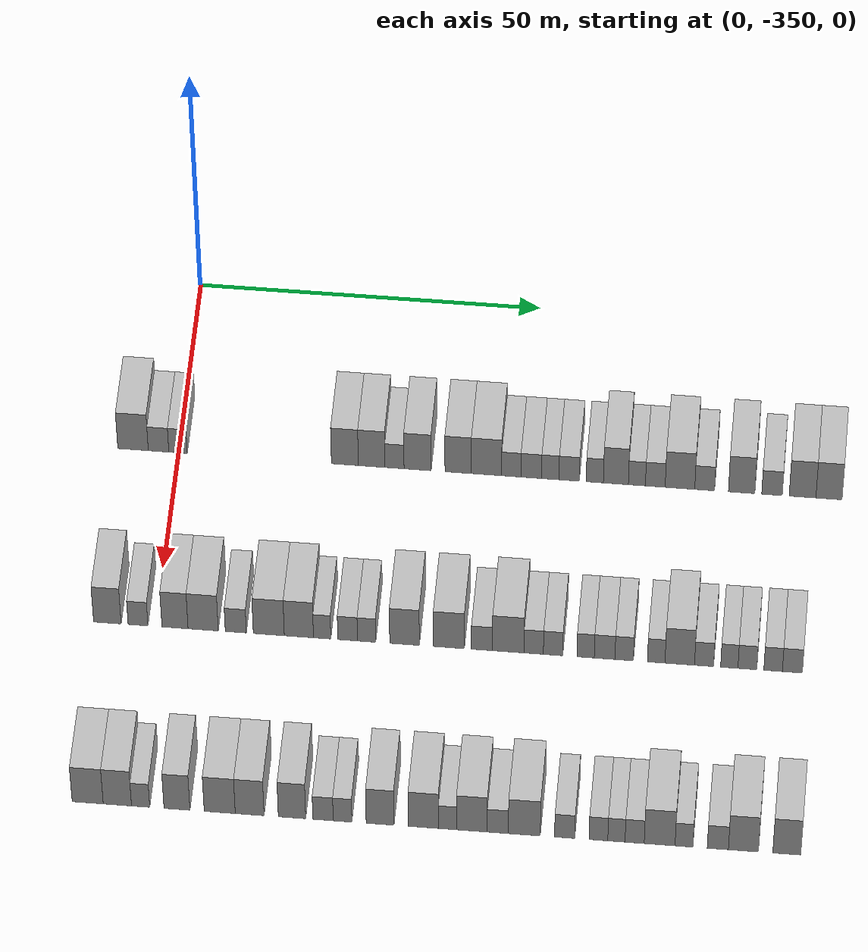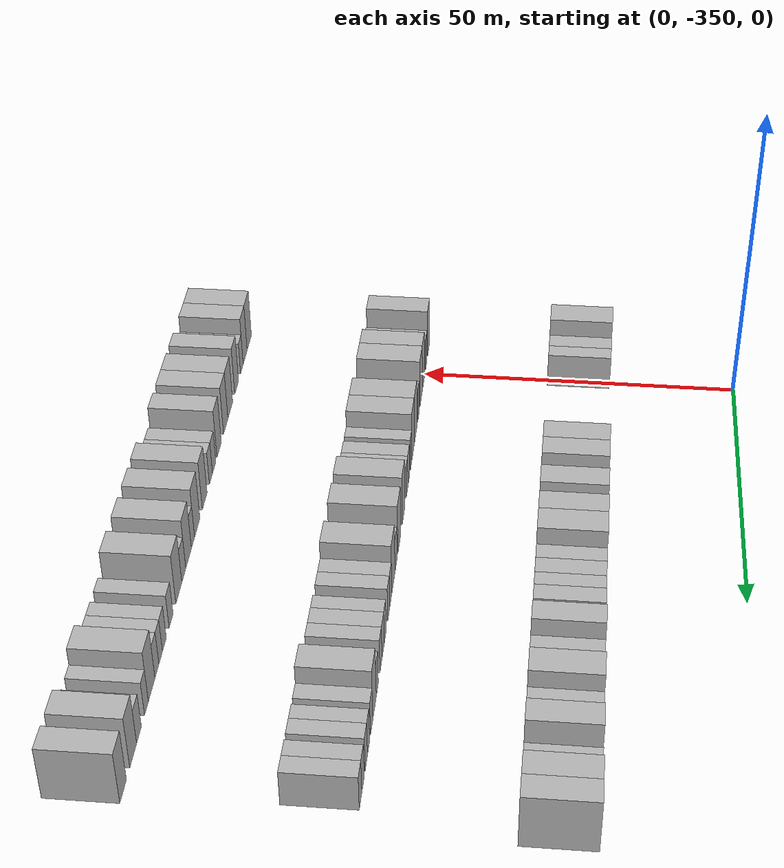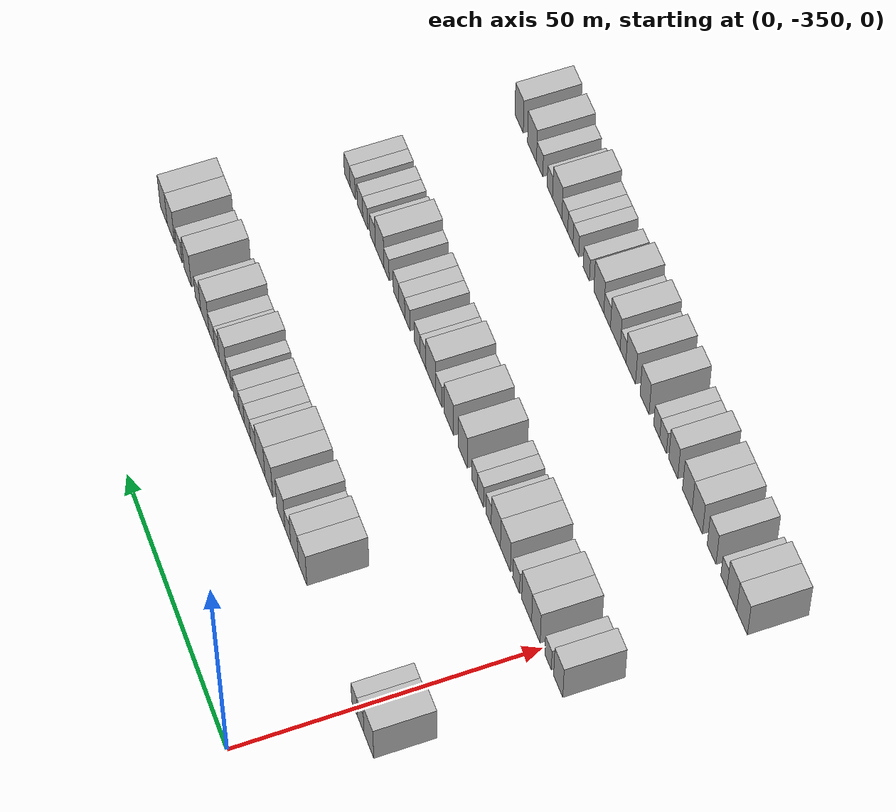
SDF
<sdf version="1.6">
 <world name="default">
  <model name="building_28">
   <static>1</static>
   <pose>25.0000 -356.5834 0 0.000000 0.000000 0.000000</pose>
   <link name="link">
    <pose>0 0 4.50 0 0 0</pose>
    <collision name="collision"><geometry><box><size>10.0000 4.4204 9.0000</size></box></geometry></collision>
    <visual name="visual">
     <cast_shadows>0</cast_shadows>
     <geometry><box><size>10.0000 4.4204 9.0000</size></box></geometry>
     <material>
      <script>
       <uri>model://HANNAS_wall/materials/scripts</uri>
       <uri>model://HANNAS_wall/materials/textures</uri>
       <name>vrc/HANNAS_wall</name>
      </script>
     </material>
    </visual>
   </link>
  </model>
  <model name="building_29">
   <static>1</static>
   <pose>25.0000 -352.8852 0 0.000000 0.000000 0.000000</pose>
   <link name="link">
    <pose>0 0 3.00 0 0 0</pose>
    <collision name="collision"><geometry><box><size>10.0000 2.9761 6.0000</size></box></geometry></collision>
    <visual name="visual">
     <cast_shadows>0</cast_shadows>
     <geometry><box><size>10.0000 2.9761 6.0000</size></box></geometry>
     <material>
      <script>
       <uri>model://HANNAS_wall/materials/scripts</uri>
       <uri>model://HANNAS_wall/materials/textures</uri>
       <name>vrc/HANNAS_wall</name>
      </script>
     </material>
    </visual>
   </link>
  </model>
  <model name="building_30">
   <static>1</static>
   <pose>25.0000 -350.0547 0 0.000000 0.000000 0.000000</pose>
   <link name="link">
    <pose>0 0 3.00 0 0 0</pose>
    <collision name="collision"><geometry><box><size>10.0000 2.6849 6.0000</size></box></geometry></collision>
    <visual name="visual">
     <cast_shadows>0</cast_shadows>
     <geometry><box><size>10.0000 2.6849 6.0000</size></box></geometry>
     <material>
      <script>
       <uri>model://HANNAS_wall/materials/scripts</uri>
       <uri>model://HANNAS_wall/materials/textures</uri>
       <name>vrc/HANNAS_wall</name>
      </script>
     </material>
    </visual>
   </link>
  </model>
  <model name="building_31">
   <static>1</static>
   <pose>25.0000 -325.8660 0 0.000000 0.000000 0.000000</pose>
   <link name="link">
    <pose>0 0 4.50 0 0 0</pose>
    <collision name="collision"><geometry><box><size>10.0000 3.8976 9.0000</size></box></geometry></collision>
    <visual name="visual">
     <cast_shadows>0</cast_shadows>
     <geometry><box><size>10.0000 3.8976 9.0000</size></box></geometry>
     <material>
      <script>
       <uri>model://HANNAS_wall/materials/scripts</uri>
       <uri>model://HANNAS_wall/materials/textures</uri>
       <name>vrc/HANNAS_wall</name>
      </script>
     </material>
    </visual>
   </link>
  </model>
  <model name="building_32">
   <static>1</static>
   <pose>25.0000 -321.9896 0 0.000000 0.000000 0.000000</pose>
   <link name="link">
    <pose>0 0 4.50 0 0 0</pose>
    <collision name="collision"><geometry><box><size>10.0000 3.8553 9.0000</size></box></geometry></collision>
    <visual name="visual">
     <cast_shadows>0</cast_shadows>
     <geometry><box><size>10.0000 3.8553 9.0000</size></box></geometry>
     <material>
      <script>
       <uri>model://HANNAS_wall/materials/scripts</uri>
       <uri>model://HANNAS_wall/materials/textures</uri>
       <name>vrc/HANNAS_wall</name>
      </script>
     </material>
    </visual>
   </link>
  </model>
  <model name="building_33">
   <static>1</static>
   <pose>25.0000 -318.6827 0 0.000000 0.000000 0.000000</pose>
   <link name="link">
    <pose>0 0 3.00 0 0 0</pose>
    <collision name="collision"><geometry><box><size>10.0000 2.7585 6.0000</size></box></geometry></collision>
    <visual name="visual">
     <cast_shadows>0</cast_shadows>
     <geometry><box><size>10.0000 2.7585 6.0000</size></box></geometry>
     <material>
      <script>
       <uri>model://HANNAS_wall/materials/scripts</uri>
       <uri>model://HANNAS_wall/materials/textures</uri>
       <name>vrc/HANNAS_wall</name>
      </script>
     </material>
    </visual>
   </link>
  </model>
  <model name="building_34">
   <static>1</static>
   <pose>25.0000 -315.3445 0 0.000000 0.000000 0.000000</pose>
   <link name="link">
    <pose>0 0 4.50 0 0 0</pose>
    <collision name="collision"><geometry><box><size>10.0000 3.9180 9.0000</size></box></geometry></collision>
    <visual name="visual">
     <cast_shadows>0</cast_shadows>
     <geometry><box><size>10.0000 3.9180 9.0000</size></box></geometry>
     <material>
      <script>
       <uri>model://HANNAS_wall/materials/scripts</uri>
       <uri>model://HANNAS_wall/materials/textures</uri>
       <name>vrc/HANNAS_wall</name>
      </script>
     </material>
    </visual>
   </link>
  </model>
  <model name="building_35">
   <static>1</static>
   <pose>25.0000 -309.4864 0 0.000000 0.000000 0.000000</pose>
   <link name="link">
    <pose>0 0 4.50 0 0 0</pose>
    <collision name="collision"><geometry><box><size>10.0000 3.7982 9.0000</size></box></geometry></collision>
    <visual name="visual">
     <cast_shadows>0</cast_shadows>
     <geometry><box><size>10.0000 3.7982 9.0000</size></box></geometry>
     <material>
      <script>
       <uri>model://HANNAS_wall/materials/scripts</uri>
       <uri>model://HANNAS_wall/materials/textures</uri>
       <name>vrc/HANNAS_wall</name>
      </script>
     </material>
    </visual>
   </link>
  </model>
  <model name="building_36">
   <static>1</static>
   <pose>25.0000 -305.3944 0 0.000000 0.000000 0.000000</pose>
   <link name="link">
    <pose>0 0 4.50 0 0 0</pose>
    <collision name="collision"><geometry><box><size>10.0000 4.3857 9.0000</size></box></geometry></collision>
    <visual name="visual">
     <cast_shadows>0</cast_shadows>
     <geometry><box><size>10.0000 4.3857 9.0000</size></box></geometry>
     <material>
      <script>
       <uri>model://HANNAS_wall/materials/scripts</uri>
       <uri>model://HANNAS_wall/materials/textures</uri>
       <name>vrc/HANNAS_wall</name>
      </script>
     </material>
    </visual>
   </link>
  </model>
  <model name="building_37">
   <static>1</static>
   <pose>25.0000 -301.8112 0 0.000000 0.000000 0.000000</pose>
   <link name="link">
    <pose>0 0 3.00 0 0 0</pose>
    <collision name="collision"><geometry><box><size>10.0000 2.7807 6.0000</size></box></geometry></collision>
    <visual name="visual">
     <cast_shadows>0</cast_shadows>
     <geometry><box><size>10.0000 2.7807 6.0000</size></box></geometry>
     <material>
      <script>
       <uri>model://HANNAS_wall/materials/scripts</uri>
       <uri>model://HANNAS_wall/materials/textures</uri>
       <name>vrc/HANNAS_wall</name>
      </script>
     </material>
    </visual>
   </link>
  </model>
  <model name="building_38">
   <static>1</static>
   <pose>25.0000 -298.9253 0 0.000000 0.000000 0.000000</pose>
   <link name="link">
    <pose>0 0 3.00 0 0 0</pose>
    <collision name="collision"><geometry><box><size>10.0000 2.9911 6.0000</size></box></geometry></collision>
    <visual name="visual">
     <cast_shadows>0</cast_shadows>
     <geometry><box><size>10.0000 2.9911 6.0000</size></box></geometry>
     <material>
      <script>
       <uri>model://HANNAS_wall/materials/scripts</uri>
       <uri>model://HANNAS_wall/materials/textures</uri>
       <name>vrc/HANNAS_wall</name>
      </script>
     </material>
    </visual>
   </link>
  </model>
  <model name="building_39">
   <static>1</static>
   <pose>25.0000 -296.1721 0 0.000000 0.000000 0.000000</pose>
   <link name="link">
    <pose>0 0 3.00 0 0 0</pose>
    <collision name="collision"><geometry><box><size>10.0000 2.5155 6.0000</size></box></geometry></collision>
    <visual name="visual">
     <cast_shadows>0</cast_shadows>
     <geometry><box><size>10.0000 2.5155 6.0000</size></box></geometry>
     <material>
      <script>
       <uri>model://HANNAS_wall/materials/scripts</uri>
       <uri>model://HANNAS_wall/materials/textures</uri>
       <name>vrc/HANNAS_wall</name>
      </script>
     </material>
    </visual>
   </link>
  </model>
  <model name="building_40">
   <static>1</static>
   <pose>25.0000 -293.4485 0 0.000000 0.000000 0.000000</pose>
   <link name="link">
    <pose>0 0 3.00 0 0 0</pose>
    <collision name="collision"><geometry><box><size>10.0000 2.9317 6.0000</size></box></geometry></collision>
    <visual name="visual">
     <cast_shadows>0</cast_shadows>
     <geometry><box><size>10.0000 2.9317 6.0000</size></box></geometry>
     <material>
      <script>
       <uri>model://HANNAS_wall/materials/scripts</uri>
       <uri>model://HANNAS_wall/materials/textures</uri>
       <name>vrc/HANNAS_wall</name>
      </script>
     </material>
    </visual>
   </link>
  </model>
  <model name="building_41">
   <static>1</static>
   <pose>25.0000 -289.7465 0 0.000000 0.000000 0.000000</pose>
   <link name="link">
    <pose>0 0 3.00 0 0 0</pose>
    <collision name="collision"><geometry><box><size>10.0000 2.4723 6.0000</size></box></geometry></collision>
    <visual name="visual">
     <cast_shadows>0</cast_shadows>
     <geometry><box><size>10.0000 2.4723 6.0000</size></box></geometry>
     <material>
      <script>
       <uri>model://HANNAS_wall/materials/scripts</uri>
       <uri>model://HANNAS_wall/materials/textures</uri>
       <name>vrc/HANNAS_wall</name>
      </script>
     </material>
    </visual>
   </link>
  </model>
  <model name="building_42">
   <static>1</static>
   <pose>25.0000 -286.7075 0 0.000000 0.000000 0.000000</pose>
   <link name="link">
    <pose>0 0 4.50 0 0 0</pose>
    <collision name="collision"><geometry><box><size>10.0000 3.6057 9.0000</size></box></geometry></collision>
    <visual name="visual">
     <cast_shadows>0</cast_shadows>
     <geometry><box><size>10.0000 3.6057 9.0000</size></box></geometry>
     <material>
      <script>
       <uri>model://HANNAS_wall/materials/scripts</uri>
       <uri>model://HANNAS_wall/materials/textures</uri>
       <name>vrc/HANNAS_wall</name>
      </script>
     </material>
    </visual>
   </link>
  </model>
  <model name="building_43">
   <static>1</static>
   <pose>25.0000 -283.6745 0 0.000000 0.000000 0.000000</pose>
   <link name="link">
    <pose>0 0 3.00 0 0 0</pose>
    <collision name="collision"><geometry><box><size>10.0000 2.4604 6.0000</size></box></geometry></collision>
    <visual name="visual">
     <cast_shadows>0</cast_shadows>
     <geometry><box><size>10.0000 2.4604 6.0000</size></box></geometry>
     <material>
      <script>
       <uri>model://HANNAS_wall/materials/scripts</uri>
       <uri>model://HANNAS_wall/materials/textures</uri>
       <name>vrc/HANNAS_wall</name>
      </script>
     </material>
    </visual>
   </link>
  </model>
  <model name="building_44">
   <static>1</static>
   <pose>25.0000 -281.0190 0 0.000000 0.000000 0.000000</pose>
   <link name="link">
    <pose>0 0 3.00 0 0 0</pose>
    <collision name="collision"><geometry><box><size>10.0000 2.8506 6.0000</size></box></geometry></collision>
    <visual name="visual">
     <cast_shadows>0</cast_shadows>
     <geometry><box><size>10.0000 2.8506 6.0000</size></box></geometry>
     <material>
      <script>
       <uri>model://HANNAS_wall/materials/scripts</uri>
       <uri>model://HANNAS_wall/materials/textures</uri>
       <name>vrc/HANNAS_wall</name>
      </script>
     </material>
    </visual>
   </link>
  </model>
  <model name="building_45">
   <static>1</static>
   <pose>25.0000 -277.4612 0 0.000000 0.000000 0.000000</pose>
   <link name="link">
    <pose>0 0 4.50 0 0 0</pose>
    <collision name="collision"><geometry><box><size>10.0000 4.2649 9.0000</size></box></geometry></collision>
    <visual name="visual">
     <cast_shadows>0</cast_shadows>
     <geometry><box><size>10.0000 4.2649 9.0000</size></box></geometry>
     <material>
      <script>
       <uri>model://HANNAS_wall/materials/scripts</uri>
       <uri>model://HANNAS_wall/materials/textures</uri>
       <name>vrc/HANNAS_wall</name>
      </script>
     </material>
    </visual>
   </link>
  </model>
  <model name="building_46">
   <static>1</static>
   <pose>25.0000 -273.9047 0 0.000000 0.000000 0.000000</pose>
   <link name="link">
    <pose>0 0 3.00 0 0 0</pose>
    <collision name="collision"><geometry><box><size>10.0000 2.8482 6.0000</size></box></geometry></collision>
    <visual name="visual">
     <cast_shadows>0</cast_shadows>
     <geometry><box><size>10.0000 2.8482 6.0000</size></box></geometry>
     <material>
      <script>
       <uri>model://HANNAS_wall/materials/scripts</uri>
       <uri>model://HANNAS_wall/materials/textures</uri>
       <name>vrc/HANNAS_wall</name>
      </script>
     </material>
    </visual>
   </link>
  </model>
  <model name="building_47">
   <static>1</static>
   <pose>25.0000 -268.5826 0 0.000000 0.000000 0.000000</pose>
   <link name="link">
    <pose>0 0 4.50 0 0 0</pose>
    <collision name="collision"><geometry><box><size>10.0000 3.7960 9.0000</size></box></geometry></collision>
    <visual name="visual">
     <cast_shadows>0</cast_shadows>
     <geometry><box><size>10.0000 3.7960 9.0000</size></box></geometry>
     <material>
      <script>
       <uri>model://HANNAS_wall/materials/scripts</uri>
       <uri>model://HANNAS_wall/materials/textures</uri>
       <name>vrc/HANNAS_wall</name>
      </script>
     </material>
    </visual>
   </link>
  </model>
  <model name="building_48">
   <static>1</static>
   <pose>25.0000 -264.2089 0 0.000000 0.000000 0.000000</pose>
   <link name="link">
    <pose>0 0 3.00 0 0 0</pose>
    <collision name="collision"><geometry><box><size>10.0000 2.9514 6.0000</size></box></geometry></collision>
    <visual name="visual">
     <cast_shadows>0</cast_shadows>
     <geometry><box><size>10.0000 2.9514 6.0000</size></box></geometry>
     <material>
      <script>
       <uri>model://HANNAS_wall/materials/scripts</uri>
       <uri>model://HANNAS_wall/materials/textures</uri>
       <name>vrc/HANNAS_wall</name>
      </script>
     </material>
    </visual>
   </link>
  </model>
  <model name="building_49">
   <static>1</static>
   <pose>25.0000 -259.8120 0 0.000000 0.000000 0.000000</pose>
   <link name="link">
    <pose>0 0 4.50 0 0 0</pose>
    <collision name="collision"><geometry><box><size>10.0000 3.8424 9.0000</size></box></geometry></collision>
    <visual name="visual">
     <cast_shadows>0</cast_shadows>
     <geometry><box><size>10.0000 3.8424 9.0000</size></box></geometry>
     <material>
      <script>
       <uri>model://HANNAS_wall/materials/scripts</uri>
       <uri>model://HANNAS_wall/materials/textures</uri>
       <name>vrc/HANNAS_wall</name>
      </script>
     </material>
    </visual>
   </link>
  </model>
  <model name="building_50">
   <static>1</static>
   <pose>25.0000 -256.0110 0 0.000000 0.000000 0.000000</pose>
   <link name="link">
    <pose>0 0 4.50 0 0 0</pose>
    <collision name="collision"><geometry><box><size>10.0000 3.7597 9.0000</size></box></geometry></collision>
    <visual name="visual">
     <cast_shadows>0</cast_shadows>
     <geometry><box><size>10.0000 3.7597 9.0000</size></box></geometry>
     <material>
      <script>
       <uri>model://HANNAS_wall/materials/scripts</uri>
       <uri>model://HANNAS_wall/materials/textures</uri>
       <name>vrc/HANNAS_wall</name>
      </script>
     </material>
    </visual>
   </link>
  </model>
  <model name="building_248">
   <static>1</static>
   <pose>55.0000 -356.8611 0 0.000000 0.000000 0.000000</pose>
   <link name="link">
    <pose>0 0 4.50 0 0 0</pose>
    <collision name="collision"><geometry><box><size>10.0000 3.9253 9.0000</size></box></geometry></collision>
    <visual name="visual">
     <cast_shadows>0</cast_shadows>
     <geometry><box><size>10.0000 3.9253 9.0000</size></box></geometry>
     <material>
      <script>
       <uri>model://HANNAS_wall/materials/scripts</uri>
       <uri>model://HANNAS_wall/materials/textures</uri>
       <name>vrc/HANNAS_wall</name>
      </script>
     </material>
    </visual>
   </link>
  </model>
  <model name="building_249">
   <static>1</static>
   <pose>55.0000 -352.4850 0 0.000000 0.000000 0.000000</pose>
   <link name="link">
    <pose>0 0 3.00 0 0 0</pose>
    <collision name="collision"><geometry><box><size>10.0000 2.8268 6.0000</size></box></geometry></collision>
    <visual name="visual">
     <cast_shadows>0</cast_shadows>
     <geometry><box><size>10.0000 2.8268 6.0000</size></box></geometry>
     <material>
      <script>
       <uri>model://HANNAS_wall/materials/scripts</uri>
       <uri>model://HANNAS_wall/materials/textures</uri>
       <name>vrc/HANNAS_wall</name>
      </script>
     </material>
    </visual>
   </link>
  </model>
  <model name="building_250">
   <static>1</static>
   <pose>55.0000 -347.2116 0 0.000000 0.000000 0.000000</pose>
   <link name="link">
    <pose>0 0 4.50 0 0 0</pose>
    <collision name="collision"><geometry><box><size>10.0000 3.7201 9.0000</size></box></geometry></collision>
    <visual name="visual">
     <cast_shadows>0</cast_shadows>
     <geometry><box><size>10.0000 3.7201 9.0000</size></box></geometry>
     <material>
      <script>
       <uri>model://HANNAS_wall/materials/scripts</uri>
       <uri>model://HANNAS_wall/materials/textures</uri>
       <name>vrc/HANNAS_wall</name>
      </script>
     </material>
    </visual>
   </link>
  </model>
  <model name="building_251">
   <static>1</static>
   <pose>55.0000 -343.1947 0 0.000000 0.000000 0.000000</pose>
   <link name="link">
    <pose>0 0 4.50 0 0 0</pose>
    <collision name="collision"><geometry><box><size>10.0000 4.3136 9.0000</size></box></geometry></collision>
    <visual name="visual">
     <cast_shadows>0</cast_shadows>
     <geometry><box><size>10.0000 4.3136 9.0000</size></box></geometry>
     <material>
      <script>
       <uri>model://HANNAS_wall/materials/scripts</uri>
       <uri>model://HANNAS_wall/materials/textures</uri>
       <name>vrc/HANNAS_wall</name>
      </script>
     </material>
    </visual>
   </link>
  </model>
  <model name="building_252">
   <static>1</static>
   <pose>55.0000 -338.5393 0 0.000000 0.000000 0.000000</pose>
   <link name="link">
    <pose>0 0 3.00 0 0 0</pose>
    <collision name="collision"><geometry><box><size>10.0000 2.9971 6.0000</size></box></geometry></collision>
    <visual name="visual">
     <cast_shadows>0</cast_shadows>
     <geometry><box><size>10.0000 2.9971 6.0000</size></box></geometry>
     <material>
      <script>
       <uri>model://HANNAS_wall/materials/scripts</uri>
       <uri>model://HANNAS_wall/materials/textures</uri>
       <name>vrc/HANNAS_wall</name>
      </script>
     </material>
    </visual>
   </link>
  </model>
  <model name="building_253">
   <static>1</static>
   <pose>55.0000 -333.8329 0 0.000000 0.000000 0.000000</pose>
   <link name="link">
    <pose>0 0 4.50 0 0 0</pose>
    <collision name="collision"><geometry><box><size>10.0000 4.4156 9.0000</size></box></geometry></collision>
    <visual name="visual">
     <cast_shadows>0</cast_shadows>
     <geometry><box><size>10.0000 4.4156 9.0000</size></box></geometry>
     <material>
      <script>
       <uri>model://HANNAS_wall/materials/scripts</uri>
       <uri>model://HANNAS_wall/materials/textures</uri>
       <name>vrc/HANNAS_wall</name>
      </script>
     </material>
    </visual>
   </link>
  </model>
  <model name="building_254">
   <static>1</static>
   <pose>55.0000 -329.5500 0 0.000000 0.000000 0.000000</pose>
   <link name="link">
    <pose>0 0 4.50 0 0 0</pose>
    <collision name="collision"><geometry><box><size>10.0000 4.1502 9.0000</size></box></geometry></collision>
    <visual name="visual">
     <cast_shadows>0</cast_shadows>
     <geometry><box><size>10.0000 4.1502 9.0000</size></box></geometry>
     <material>
      <script>
       <uri>model://HANNAS_wall/materials/scripts</uri>
       <uri>model://HANNAS_wall/materials/textures</uri>
       <name>vrc/HANNAS_wall</name>
      </script>
     </material>
    </visual>
   </link>
  </model>
  <model name="building_255">
   <static>1</static>
   <pose>55.0000 -326.2411 0 0.000000 0.000000 0.000000</pose>
   <link name="link">
    <pose>0 0 3.00 0 0 0</pose>
    <collision name="collision"><geometry><box><size>10.0000 2.4675 6.0000</size></box></geometry></collision>
    <visual name="visual">
     <cast_shadows>0</cast_shadows>
     <geometry><box><size>10.0000 2.4675 6.0000</size></box></geometry>
     <material>
      <script>
       <uri>model://HANNAS_wall/materials/scripts</uri>
       <uri>model://HANNAS_wall/materials/textures</uri>
       <name>vrc/HANNAS_wall</name>
      </script>
     </material>
    </visual>
   </link>
  </model>
  <model name="building_256">
   <static>1</static>
   <pose>55.0000 -322.6060 0 0.000000 0.000000 0.000000</pose>
   <link name="link">
    <pose>0 0 3.00 0 0 0</pose>
    <collision name="collision"><geometry><box><size>10.0000 2.8026 6.0000</size></box></geometry></collision>
    <visual name="visual">
     <cast_shadows>0</cast_shadows>
     <geometry><box><size>10.0000 2.8026 6.0000</size></box></geometry>
     <material>
      <script>
       <uri>model://HANNAS_wall/materials/scripts</uri>
       <uri>model://HANNAS_wall/materials/textures</uri>
       <name>vrc/HANNAS_wall</name>
      </script>
     </material>
    </visual>
   </link>
  </model>
  <model name="building_257">
   <static>1</static>
   <pose>55.0000 -319.9098 0 0.000000 0.000000 0.000000</pose>
   <link name="link">
    <pose>0 0 3.00 0 0 0</pose>
    <collision name="collision"><geometry><box><size>10.0000 2.5899 6.0000</size></box></geometry></collision>
    <visual name="visual">
     <cast_shadows>0</cast_shadows>
     <geometry><box><size>10.0000 2.5899 6.0000</size></box></geometry>
     <material>
      <script>
       <uri>model://HANNAS_wall/materials/scripts</uri>
       <uri>model://HANNAS_wall/materials/textures</uri>
       <name>vrc/HANNAS_wall</name>
      </script>
     </material>
    </visual>
   </link>
  </model>
  <model name="building_258">
   <static>1</static>
   <pose>55.0000 -314.5083 0 0.000000 0.000000 0.000000</pose>
   <link name="link">
    <pose>0 0 4.50 0 0 0</pose>
    <collision name="collision"><geometry><box><size>10.0000 4.2131 9.0000</size></box></geometry></collision>
    <visual name="visual">
     <cast_shadows>0</cast_shadows>
     <geometry><box><size>10.0000 4.2131 9.0000</size></box></geometry>
     <material>
      <script>
       <uri>model://HANNAS_wall/materials/scripts</uri>
       <uri>model://HANNAS_wall/materials/textures</uri>
       <name>vrc/HANNAS_wall</name>
      </script>
     </material>
    </visual>
   </link>
  </model>
  <model name="building_259">
   <static>1</static>
   <pose>55.0000 -308.2039 0 0.000000 0.000000 0.000000</pose>
   <link name="link">
    <pose>0 0 4.50 0 0 0</pose>
    <collision name="collision"><geometry><box><size>10.0000 4.3956 9.0000</size></box></geometry></collision>
    <visual name="visual">
     <cast_shadows>0</cast_shadows>
     <geometry><box><size>10.0000 4.3956 9.0000</size></box></geometry>
     <material>
      <script>
       <uri>model://HANNAS_wall/materials/scripts</uri>
       <uri>model://HANNAS_wall/materials/textures</uri>
       <name>vrc/HANNAS_wall</name>
      </script>
     </material>
    </visual>
   </link>
  </model>
  <model name="building_260">
   <static>1</static>
   <pose>55.0000 -303.5075 0 0.000000 0.000000 0.000000</pose>
   <link name="link">
    <pose>0 0 3.00 0 0 0</pose>
    <collision name="collision"><geometry><box><size>10.0000 2.9973 6.0000</size></box></geometry></collision>
    <visual name="visual">
     <cast_shadows>0</cast_shadows>
     <geometry><box><size>10.0000 2.9973 6.0000</size></box></geometry>
     <material>
      <script>
       <uri>model://HANNAS_wall/materials/scripts</uri>
       <uri>model://HANNAS_wall/materials/textures</uri>
       <name>vrc/HANNAS_wall</name>
      </script>
     </material>
    </visual>
   </link>
  </model>
  <model name="building_261">
   <static>1</static>
   <pose>55.0000 -299.7717 0 0.000000 0.000000 0.000000</pose>
   <link name="link">
    <pose>0 0 4.50 0 0 0</pose>
    <collision name="collision"><geometry><box><size>10.0000 4.4742 9.0000</size></box></geometry></collision>
    <visual name="visual">
     <cast_shadows>0</cast_shadows>
     <geometry><box><size>10.0000 4.4742 9.0000</size></box></geometry>
     <material>
      <script>
       <uri>model://HANNAS_wall/materials/scripts</uri>
       <uri>model://HANNAS_wall/materials/textures</uri>
       <name>vrc/HANNAS_wall</name>
      </script>
     </material>
    </visual>
   </link>
  </model>
  <model name="building_262">
   <static>1</static>
   <pose>55.0000 -296.1598 0 0.000000 0.000000 0.000000</pose>
   <link name="link">
    <pose>0 0 3.00 0 0 0</pose>
    <collision name="collision"><geometry><box><size>10.0000 2.7497 6.0000</size></box></geometry></collision>
    <visual name="visual">
     <cast_shadows>0</cast_shadows>
     <geometry><box><size>10.0000 2.7497 6.0000</size></box></geometry>
     <material>
      <script>
       <uri>model://HANNAS_wall/materials/scripts</uri>
       <uri>model://HANNAS_wall/materials/textures</uri>
       <name>vrc/HANNAS_wall</name>
      </script>
     </material>
    </visual>
   </link>
  </model>
  <model name="building_263">
   <static>1</static>
   <pose>55.0000 -293.4086 0 0.000000 0.000000 0.000000</pose>
   <link name="link">
    <pose>0 0 3.00 0 0 0</pose>
    <collision name="collision"><geometry><box><size>10.0000 2.7526 6.0000</size></box></geometry></collision>
    <visual name="visual">
     <cast_shadows>0</cast_shadows>
     <geometry><box><size>10.0000 2.7526 6.0000</size></box></geometry>
     <material>
      <script>
       <uri>model://HANNAS_wall/materials/scripts</uri>
       <uri>model://HANNAS_wall/materials/textures</uri>
       <name>vrc/HANNAS_wall</name>
      </script>
     </material>
    </visual>
   </link>
  </model>
  <model name="building_264">
   <static>1</static>
   <pose>55.0000 -288.7978 0 0.000000 0.000000 0.000000</pose>
   <link name="link">
    <pose>0 0 3.00 0 0 0</pose>
    <collision name="collision"><geometry><box><size>10.0000 2.4690 6.0000</size></box></geometry></collision>
    <visual name="visual">
     <cast_shadows>0</cast_shadows>
     <geometry><box><size>10.0000 2.4690 6.0000</size></box></geometry>
     <material>
      <script>
       <uri>model://HANNAS_wall/materials/scripts</uri>
       <uri>model://HANNAS_wall/materials/textures</uri>
       <name>vrc/HANNAS_wall</name>
      </script>
     </material>
    </visual>
   </link>
  </model>
  <model name="building_265">
   <static>1</static>
   <pose>55.0000 -286.0939 0 0.000000 0.000000 0.000000</pose>
   <link name="link">
    <pose>0 0 3.00 0 0 0</pose>
    <collision name="collision"><geometry><box><size>10.0000 2.9388 6.0000</size></box></geometry></collision>
    <visual name="visual">
     <cast_shadows>0</cast_shadows>
     <geometry><box><size>10.0000 2.9388 6.0000</size></box></geometry>
     <material>
      <script>
       <uri>model://HANNAS_wall/materials/scripts</uri>
       <uri>model://HANNAS_wall/materials/textures</uri>
       <name>vrc/HANNAS_wall</name>
      </script>
     </material>
    </visual>
   </link>
  </model>
  <model name="building_266">
   <static>1</static>
   <pose>55.0000 -283.3218 0 0.000000 0.000000 0.000000</pose>
   <link name="link">
    <pose>0 0 3.00 0 0 0</pose>
    <collision name="collision"><geometry><box><size>10.0000 2.6055 6.0000</size></box></geometry></collision>
    <visual name="visual">
     <cast_shadows>0</cast_shadows>
     <geometry><box><size>10.0000 2.6055 6.0000</size></box></geometry>
     <material>
      <script>
       <uri>model://HANNAS_wall/materials/scripts</uri>
       <uri>model://HANNAS_wall/materials/textures</uri>
       <name>vrc/HANNAS_wall</name>
      </script>
     </material>
    </visual>
   </link>
  </model>
  <model name="building_267">
   <static>1</static>
   <pose>55.0000 -278.7768 0 0.000000 0.000000 0.000000</pose>
   <link name="link">
    <pose>0 0 3.00 0 0 0</pose>
    <collision name="collision"><geometry><box><size>10.0000 2.4845 6.0000</size></box></geometry></collision>
    <visual name="visual">
     <cast_shadows>0</cast_shadows>
     <geometry><box><size>10.0000 2.4845 6.0000</size></box></geometry>
     <material>
      <script>
       <uri>model://HANNAS_wall/materials/scripts</uri>
       <uri>model://HANNAS_wall/materials/textures</uri>
       <name>vrc/HANNAS_wall</name>
      </script>
     </material>
    </visual>
   </link>
  </model>
  <model name="building_268">
   <static>1</static>
   <pose>55.0000 -275.4428 0 0.000000 0.000000 0.000000</pose>
   <link name="link">
    <pose>0 0 4.50 0 0 0</pose>
    <collision name="collision"><geometry><box><size>10.0000 4.1836 9.0000</size></box></geometry></collision>
    <visual name="visual">
     <cast_shadows>0</cast_shadows>
     <geometry><box><size>10.0000 4.1836 9.0000</size></box></geometry>
     <material>
      <script>
       <uri>model://HANNAS_wall/materials/scripts</uri>
       <uri>model://HANNAS_wall/materials/textures</uri>
       <name>vrc/HANNAS_wall</name>
      </script>
     </material>
    </visual>
   </link>
  </model>
  <model name="building_269">
   <static>1</static>
   <pose>55.0000 -272.0028 0 0.000000 0.000000 0.000000</pose>
   <link name="link">
    <pose>0 0 3.00 0 0 0</pose>
    <collision name="collision"><geometry><box><size>10.0000 2.6965 6.0000</size></box></geometry></collision>
    <visual name="visual">
     <cast_shadows>0</cast_shadows>
     <geometry><box><size>10.0000 2.6965 6.0000</size></box></geometry>
     <material>
      <script>
       <uri>model://HANNAS_wall/materials/scripts</uri>
       <uri>model://HANNAS_wall/materials/textures</uri>
       <name>vrc/HANNAS_wall</name>
      </script>
     </material>
    </visual>
   </link>
  </model>
  <model name="building_270">
   <static>1</static>
   <pose>55.0000 -268.4302 0 0.000000 0.000000 0.000000</pose>
   <link name="link">
    <pose>0 0 3.00 0 0 0</pose>
    <collision name="collision"><geometry><box><size>10.0000 2.4486 6.0000</size></box></geometry></collision>
    <visual name="visual">
     <cast_shadows>0</cast_shadows>
     <geometry><box><size>10.0000 2.4486 6.0000</size></box></geometry>
     <material>
      <script>
       <uri>model://HANNAS_wall/materials/scripts</uri>
       <uri>model://HANNAS_wall/materials/textures</uri>
       <name>vrc/HANNAS_wall</name>
      </script>
     </material>
    </visual>
   </link>
  </model>
  <model name="building_271">
   <static>1</static>
   <pose>55.0000 -265.8712 0 0.000000 0.000000 0.000000</pose>
   <link name="link">
    <pose>0 0 3.00 0 0 0</pose>
    <collision name="collision"><geometry><box><size>10.0000 2.6696 6.0000</size></box></geometry></collision>
    <visual name="visual">
     <cast_shadows>0</cast_shadows>
     <geometry><box><size>10.0000 2.6696 6.0000</size></box></geometry>
     <material>
      <script>
       <uri>model://HANNAS_wall/materials/scripts</uri>
       <uri>model://HANNAS_wall/materials/textures</uri>
       <name>vrc/HANNAS_wall</name>
      </script>
     </material>
    </visual>
   </link>
  </model>
  <model name="building_272">
   <static>1</static>
   <pose>55.0000 -262.2242 0 0.000000 0.000000 0.000000</pose>
   <link name="link">
    <pose>0 0 3.00 0 0 0</pose>
    <collision name="collision"><geometry><box><size>10.0000 2.6243 6.0000</size></box></geometry></collision>
    <visual name="visual">
     <cast_shadows>0</cast_shadows>
     <geometry><box><size>10.0000 2.6243 6.0000</size></box></geometry>
     <material>
      <script>
       <uri>model://HANNAS_wall/materials/scripts</uri>
       <uri>model://HANNAS_wall/materials/textures</uri>
       <name>vrc/HANNAS_wall</name>
      </script>
     </material>
    </visual>
   </link>
  </model>
  <model name="building_273">
   <static>1</static>
   <pose>55.0000 -259.4985 0 0.000000 0.000000 0.000000</pose>
   <link name="link">
    <pose>0 0 3.00 0 0 0</pose>
    <collision name="collision"><geometry><box><size>10.0000 2.8272 6.0000</size></box></geometry></collision>
    <visual name="visual">
     <cast_shadows>0</cast_shadows>
     <geometry><box><size>10.0000 2.8272 6.0000</size></box></geometry>
     <material>
      <script>
       <uri>model://HANNAS_wall/materials/scripts</uri>
       <uri>model://HANNAS_wall/materials/textures</uri>
       <name>vrc/HANNAS_wall</name>
      </script>
     </material>
    </visual>
   </link>
  </model>
  <model name="building_465">
   <static>1</static>
   <pose>85.0000 -356.1755 0 0.000000 0.000000 0.000000</pose>
   <link name="link">
    <pose>0 0 4.50 0 0 0</pose>
    <collision name="collision"><geometry><box><size>10.0000 4.3537 9.0000</size></box></geometry></collision>
    <visual name="visual">
     <cast_shadows>0</cast_shadows>
     <geometry><box><size>10.0000 4.3537 9.0000</size></box></geometry>
     <material>
      <script>
       <uri>model://HANNAS_wall/materials/scripts</uri>
       <uri>model://HANNAS_wall/materials/textures</uri>
       <name>vrc/HANNAS_wall</name>
      </script>
     </material>
    </visual>
   </link>
  </model>
  <model name="building_466">
   <static>1</static>
   <pose>85.0000 -352.0144 0 0.000000 0.000000 0.000000</pose>
   <link name="link">
    <pose>0 0 4.50 0 0 0</pose>
    <collision name="collision"><geometry><box><size>10.0000 3.9684 9.0000</size></box></geometry></collision>
    <visual name="visual">
     <cast_shadows>0</cast_shadows>
     <geometry><box><size>10.0000 3.9684 9.0000</size></box></geometry>
     <material>
      <script>
       <uri>model://HANNAS_wall/materials/scripts</uri>
       <uri>model://HANNAS_wall/materials/textures</uri>
       <name>vrc/HANNAS_wall</name>
      </script>
     </material>
    </visual>
   </link>
  </model>
  <model name="building_467">
   <static>1</static>
   <pose>85.0000 -348.7527 0 0.000000 0.000000 0.000000</pose>
   <link name="link">
    <pose>0 0 3.00 0 0 0</pose>
    <collision name="collision"><geometry><box><size>10.0000 2.5551 6.0000</size></box></geometry></collision>
    <visual name="visual">
     <cast_shadows>0</cast_shadows>
     <geometry><box><size>10.0000 2.5551 6.0000</size></box></geometry>
     <material>
      <script>
       <uri>model://HANNAS_wall/materials/scripts</uri>
       <uri>model://HANNAS_wall/materials/textures</uri>
       <name>vrc/HANNAS_wall</name>
      </script>
     </material>
    </visual>
   </link>
  </model>
  <model name="building_468">
   <static>1</static>
   <pose>85.0000 -343.6559 0 0.000000 0.000000 0.000000</pose>
   <link name="link">
    <pose>0 0 4.50 0 0 0</pose>
    <collision name="collision"><geometry><box><size>10.0000 3.6383 9.0000</size></box></geometry></collision>
    <visual name="visual">
     <cast_shadows>0</cast_shadows>
     <geometry><box><size>10.0000 3.6383 9.0000</size></box></geometry>
     <material>
      <script>
       <uri>model://HANNAS_wall/materials/scripts</uri>
       <uri>model://HANNAS_wall/materials/textures</uri>
       <name>vrc/HANNAS_wall</name>
      </script>
     </material>
    </visual>
   </link>
  </model>
  <model name="building_469">
   <static>1</static>
   <pose>85.0000 -337.6607 0 0.000000 0.000000 0.000000</pose>
   <link name="link">
    <pose>0 0 4.50 0 0 0</pose>
    <collision name="collision"><geometry><box><size>10.0000 4.3523 9.0000</size></box></geometry></collision>
    <visual name="visual">
     <cast_shadows>0</cast_shadows>
     <geometry><box><size>10.0000 4.3523 9.0000</size></box></geometry>
     <material>
      <script>
       <uri>model://HANNAS_wall/materials/scripts</uri>
       <uri>model://HANNAS_wall/materials/textures</uri>
       <name>vrc/HANNAS_wall</name>
      </script>
     </material>
    </visual>
   </link>
  </model>
  <model name="building_470">
   <static>1</static>
   <pose>85.0000 -333.4646 0 0.000000 0.000000 0.000000</pose>
   <link name="link">
    <pose>0 0 4.50 0 0 0</pose>
    <collision name="collision"><geometry><box><size>10.0000 4.0399 9.0000</size></box></geometry></collision>
    <visual name="visual">
     <cast_shadows>0</cast_shadows>
     <geometry><box><size>10.0000 4.0399 9.0000</size></box></geometry>
     <material>
      <script>
       <uri>model://HANNAS_wall/materials/scripts</uri>
       <uri>model://HANNAS_wall/materials/textures</uri>
       <name>vrc/HANNAS_wall</name>
      </script>
     </material>
    </visual>
   </link>
  </model>
  <model name="building_471">
   <static>1</static>
   <pose>85.0000 -327.5300 0 0.000000 0.000000 0.000000</pose>
   <link name="link">
    <pose>0 0 4.50 0 0 0</pose>
    <collision name="collision"><geometry><box><size>10.0000 3.8293 9.0000</size></box></geometry></collision>
    <visual name="visual">
     <cast_shadows>0</cast_shadows>
     <geometry><box><size>10.0000 3.8293 9.0000</size></box></geometry>
     <material>
      <script>
       <uri>model://HANNAS_wall/materials/scripts</uri>
       <uri>model://HANNAS_wall/materials/textures</uri>
       <name>vrc/HANNAS_wall</name>
      </script>
     </material>
    </visual>
   </link>
  </model>
  <model name="building_472">
   <static>1</static>
   <pose>85.0000 -323.1915 0 0.000000 0.000000 0.000000</pose>
   <link name="link">
    <pose>0 0 3.00 0 0 0</pose>
    <collision name="collision"><geometry><box><size>10.0000 2.8476 6.0000</size></box></geometry></collision>
    <visual name="visual">
     <cast_shadows>0</cast_shadows>
     <geometry><box><size>10.0000 2.8476 6.0000</size></box></geometry>
     <material>
      <script>
       <uri>model://HANNAS_wall/materials/scripts</uri>
       <uri>model://HANNAS_wall/materials/textures</uri>
       <name>vrc/HANNAS_wall</name>
      </script>
     </material>
    </visual>
   </link>
  </model>
  <model name="building_473">
   <static>1</static>
   <pose>85.0000 -320.4609 0 0.000000 0.000000 0.000000</pose>
   <link name="link">
    <pose>0 0 3.00 0 0 0</pose>
    <collision name="collision"><geometry><box><size>10.0000 2.6136 6.0000</size></box></geometry></collision>
    <visual name="visual">
     <cast_shadows>0</cast_shadows>
     <geometry><box><size>10.0000 2.6136 6.0000</size></box></geometry>
     <material>
      <script>
       <uri>model://HANNAS_wall/materials/scripts</uri>
       <uri>model://HANNAS_wall/materials/textures</uri>
       <name>vrc/HANNAS_wall</name>
      </script>
     </material>
    </visual>
   </link>
  </model>
  <model name="building_474">
   <static>1</static>
   <pose>85.0000 -315.2073 0 0.000000 0.000000 0.000000</pose>
   <link name="link">
    <pose>0 0 4.50 0 0 0</pose>
    <collision name="collision"><geometry><box><size>10.0000 3.8937 9.0000</size></box></geometry></collision>
    <visual name="visual">
     <cast_shadows>0</cast_shadows>
     <geometry><box><size>10.0000 3.8937 9.0000</size></box></geometry>
     <material>
      <script>
       <uri>model://HANNAS_wall/materials/scripts</uri>
       <uri>model://HANNAS_wall/materials/textures</uri>
       <name>vrc/HANNAS_wall</name>
      </script>
     </material>
    </visual>
   </link>
  </model>
  <model name="building_475">
   <static>1</static>
   <pose>85.0000 -309.1627 0 0.000000 0.000000 0.000000</pose>
   <link name="link">
    <pose>0 0 4.50 0 0 0</pose>
    <collision name="collision"><geometry><box><size>10.0000 4.1955 9.0000</size></box></geometry></collision>
    <visual name="visual">
     <cast_shadows>0</cast_shadows>
     <geometry><box><size>10.0000 4.1955 9.0000</size></box></geometry>
     <material>
      <script>
       <uri>model://HANNAS_wall/materials/scripts</uri>
       <uri>model://HANNAS_wall/materials/textures</uri>
       <name>vrc/HANNAS_wall</name>
      </script>
     </material>
    </visual>
   </link>
  </model>
  <model name="building_476">
   <static>1</static>
   <pose>85.0000 -305.8004 0 0.000000 0.000000 0.000000</pose>
   <link name="link">
    <pose>0 0 3.00 0 0 0</pose>
    <collision name="collision"><geometry><box><size>10.0000 2.5291 6.0000</size></box></geometry></collision>
    <visual name="visual">
     <cast_shadows>0</cast_shadows>
     <geometry><box><size>10.0000 2.5291 6.0000</size></box></geometry>
     <material>
      <script>
       <uri>model://HANNAS_wall/materials/scripts</uri>
       <uri>model://HANNAS_wall/materials/textures</uri>
       <name>vrc/HANNAS_wall</name>
      </script>
     </material>
    </visual>
   </link>
  </model>
  <model name="building_477">
   <static>1</static>
   <pose>85.0000 -302.3898 0 0.000000 0.000000 0.000000</pose>
   <link name="link">
    <pose>0 0 4.50 0 0 0</pose>
    <collision name="collision"><geometry><box><size>10.0000 4.2919 9.0000</size></box></geometry></collision>
    <visual name="visual">
     <cast_shadows>0</cast_shadows>
     <geometry><box><size>10.0000 4.2919 9.0000</size></box></geometry>
     <material>
      <script>
       <uri>model://HANNAS_wall/materials/scripts</uri>
       <uri>model://HANNAS_wall/materials/textures</uri>
       <name>vrc/HANNAS_wall</name>
      </script>
     </material>
    </visual>
   </link>
  </model>
  <model name="building_478">
   <static>1</static>
   <pose>85.0000 -298.7644 0 0.000000 0.000000 0.000000</pose>
   <link name="link">
    <pose>0 0 3.00 0 0 0</pose>
    <collision name="collision"><geometry><box><size>10.0000 2.9589 6.0000</size></box></geometry></collision>
    <visual name="visual">
     <cast_shadows>0</cast_shadows>
     <geometry><box><size>10.0000 2.9589 6.0000</size></box></geometry>
     <material>
      <script>
       <uri>model://HANNAS_wall/materials/scripts</uri>
       <uri>model://HANNAS_wall/materials/textures</uri>
       <name>vrc/HANNAS_wall</name>
      </script>
     </material>
    </visual>
   </link>
  </model>
  <model name="building_479">
   <static>1</static>
   <pose>85.0000 -295.0609 0 0.000000 0.000000 0.000000</pose>
   <link name="link">
    <pose>0 0 4.50 0 0 0</pose>
    <collision name="collision"><geometry><box><size>10.0000 4.4481 9.0000</size></box></geometry></collision>
    <visual name="visual">
     <cast_shadows>0</cast_shadows>
     <geometry><box><size>10.0000 4.4481 9.0000</size></box></geometry>
     <material>
      <script>
       <uri>model://HANNAS_wall/materials/scripts</uri>
       <uri>model://HANNAS_wall/materials/textures</uri>
       <name>vrc/HANNAS_wall</name>
      </script>
     </material>
    </visual>
   </link>
  </model>
  <model name="building_480">
   <static>1</static>
   <pose>85.0000 -289.4328 0 0.000000 0.000000 0.000000</pose>
   <link name="link">
    <pose>0 0 3.00 0 0 0</pose>
    <collision name="collision"><geometry><box><size>10.0000 2.8081 6.0000</size></box></geometry></collision>
    <visual name="visual">
     <cast_shadows>0</cast_shadows>
     <geometry><box><size>10.0000 2.8081 6.0000</size></box></geometry>
     <material>
      <script>
       <uri>model://HANNAS_wall/materials/scripts</uri>
       <uri>model://HANNAS_wall/materials/textures</uri>
       <name>vrc/HANNAS_wall</name>
      </script>
     </material>
    </visual>
   </link>
  </model>
  <model name="building_481">
   <static>1</static>
   <pose>85.0000 -284.7266 0 0.000000 0.000000 0.000000</pose>
   <link name="link">
    <pose>0 0 3.00 0 0 0</pose>
    <collision name="collision"><geometry><box><size>10.0000 2.6042 6.0000</size></box></geometry></collision>
    <visual name="visual">
     <cast_shadows>0</cast_shadows>
     <geometry><box><size>10.0000 2.6042 6.0000</size></box></geometry>
     <material>
      <script>
       <uri>model://HANNAS_wall/materials/scripts</uri>
       <uri>model://HANNAS_wall/materials/textures</uri>
       <name>vrc/HANNAS_wall</name>
      </script>
     </material>
    </visual>
   </link>
  </model>
  <model name="building_482">
   <static>1</static>
   <pose>85.0000 -282.2190 0 0.000000 0.000000 0.000000</pose>
   <link name="link">
    <pose>0 0 3.00 0 0 0</pose>
    <collision name="collision"><geometry><box><size>10.0000 2.4111 6.0000</size></box></geometry></collision>
    <visual name="visual">
     <cast_shadows>0</cast_shadows>
     <geometry><box><size>10.0000 2.4111 6.0000</size></box></geometry>
     <material>
      <script>
       <uri>model://HANNAS_wall/materials/scripts</uri>
       <uri>model://HANNAS_wall/materials/textures</uri>
       <name>vrc/HANNAS_wall</name>
      </script>
     </material>
    </visual>
   </link>
  </model>
  <model name="building_483">
   <static>1</static>
   <pose>85.0000 -279.6792 0 0.000000 0.000000 0.000000</pose>
   <link name="link">
    <pose>0 0 3.00 0 0 0</pose>
    <collision name="collision"><geometry><box><size>10.0000 2.6683 6.0000</size></box></geometry></collision>
    <visual name="visual">
     <cast_shadows>0</cast_shadows>
     <geometry><box><size>10.0000 2.6683 6.0000</size></box></geometry>
     <material>
      <script>
       <uri>model://HANNAS_wall/materials/scripts</uri>
       <uri>model://HANNAS_wall/materials/textures</uri>
       <name>vrc/HANNAS_wall</name>
      </script>
     </material>
    </visual>
   </link>
  </model>
  <model name="building_484">
   <static>1</static>
   <pose>85.0000 -276.1959 0 0.000000 0.000000 0.000000</pose>
   <link name="link">
    <pose>0 0 4.50 0 0 0</pose>
    <collision name="collision"><geometry><box><size>10.0000 4.2983 9.0000</size></box></geometry></collision>
    <visual name="visual">
     <cast_shadows>0</cast_shadows>
     <geometry><box><size>10.0000 4.2983 9.0000</size></box></geometry>
     <material>
      <script>
       <uri>model://HANNAS_wall/materials/scripts</uri>
       <uri>model://HANNAS_wall/materials/textures</uri>
       <name>vrc/HANNAS_wall</name>
      </script>
     </material>
    </visual>
   </link>
  </model>
  <model name="building_485">
   <static>1</static>
   <pose>85.0000 -272.8058 0 0.000000 0.000000 0.000000</pose>
   <link name="link">
    <pose>0 0 3.00 0 0 0</pose>
    <collision name="collision"><geometry><box><size>10.0000 2.4819 6.0000</size></box></geometry></collision>
    <visual name="visual">
     <cast_shadows>0</cast_shadows>
     <geometry><box><size>10.0000 2.4819 6.0000</size></box></geometry>
     <material>
      <script>
       <uri>model://HANNAS_wall/materials/scripts</uri>
       <uri>model://HANNAS_wall/materials/textures</uri>
       <name>vrc/HANNAS_wall</name>
      </script>
     </material>
    </visual>
   </link>
  </model>
  <model name="building_486">
   <static>1</static>
   <pose>85.0000 -268.0921 0 0.000000 0.000000 0.000000</pose>
   <link name="link">
    <pose>0 0 3.00 0 0 0</pose>
    <collision name="collision"><geometry><box><size>10.0000 2.9455 6.0000</size></box></geometry></collision>
    <visual name="visual">
     <cast_shadows>0</cast_shadows>
     <geometry><box><size>10.0000 2.9455 6.0000</size></box></geometry>
     <material>
      <script>
       <uri>model://HANNAS_wall/materials/scripts</uri>
       <uri>model://HANNAS_wall/materials/textures</uri>
       <name>vrc/HANNAS_wall</name>
      </script>
     </material>
    </visual>
   </link>
  </model>
  <model name="building_487">
   <static>1</static>
   <pose>85.0000 -264.5309 0 0.000000 0.000000 0.000000</pose>
   <link name="link">
    <pose>0 0 4.50 0 0 0</pose>
    <collision name="collision"><geometry><box><size>10.0000 4.1768 9.0000</size></box></geometry></collision>
    <visual name="visual">
     <cast_shadows>0</cast_shadows>
     <geometry><box><size>10.0000 4.1768 9.0000</size></box></geometry>
     <material>
      <script>
       <uri>model://HANNAS_wall/materials/scripts</uri>
       <uri>model://HANNAS_wall/materials/textures</uri>
       <name>vrc/HANNAS_wall</name>
      </script>
     </material>
    </visual>
   </link>
  </model>
  <model name="building_488">
   <static>1</static>
   <pose>85.0000 -258.5010 0 0.000000 0.000000 0.000000</pose>
   <link name="link">
    <pose>0 0 4.50 0 0 0</pose>
    <collision name="collision"><geometry><box><size>10.0000 3.8829 9.0000</size></box></geometry></collision>
    <visual name="visual">
     <cast_shadows>0</cast_shadows>
     <geometry><box><size>10.0000 3.8829 9.0000</size></box></geometry>
     <material>
      <script>
       <uri>model://HANNAS_wall/materials/scripts</uri>
       <uri>model://HANNAS_wall/materials/textures</uri>
       <name>vrc/HANNAS_wall</name>
      </script>
     </material>
    </visual>
   </link>
  </model>
 </world>
</sdf>
